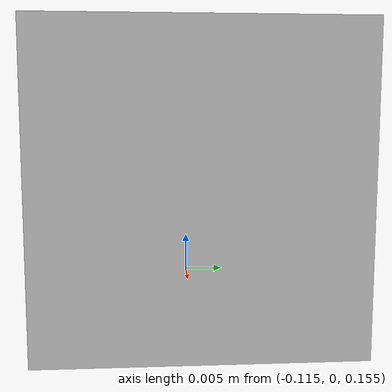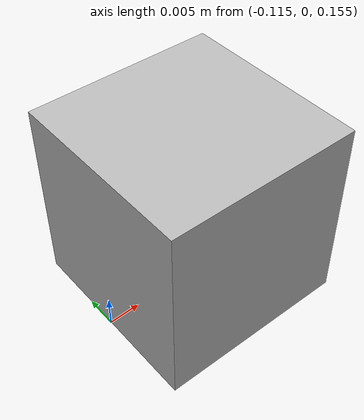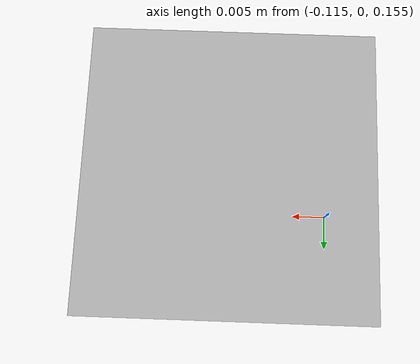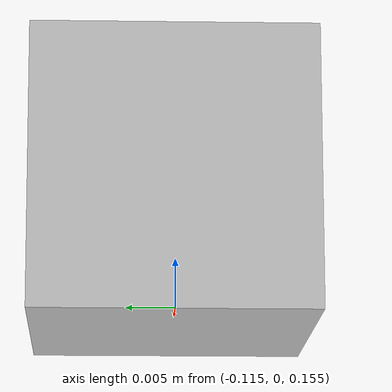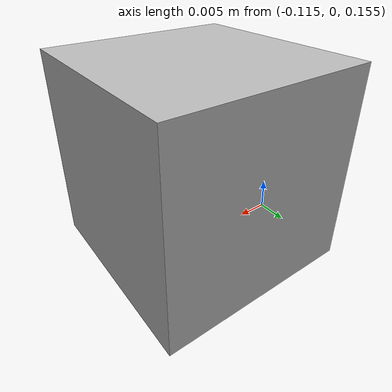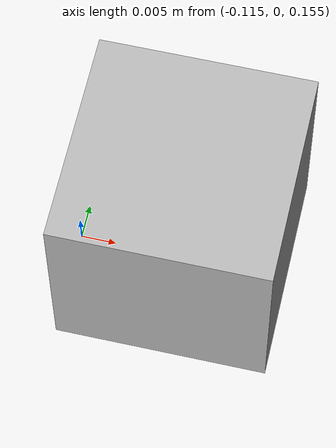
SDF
<?xml version="1.0" ?>
<sdf version="1.5">
  <model name="ptgrey_75mm_camera">
    <pose>-0.1 0 0.17 0 1.5707 0</pose>
    <static>true</static>
    <link name="link">
      <inertial>
        <pose>0 0 0 0 0 0</pose>
        <mass>0.000001</mass>
        <inertia>
          <ixx>0.000001</ixx>
          <ixy>0.000000</ixy>
          <ixz>0.000000</ixz>
          <iyy>0.000001</iyy>
          <iyz>0.000000</iyz>
          <izz>0.000001</izz>
        </inertia>
      </inertial>
      <collision name="collision">
        <geometry>
          <box>
            <size>0.03 0.03 0.03</size>
          </box>
        </geometry>
      </collision>
      <visual name="visual">
        <geometry>
          <box>
            <size>0.03 0.03 0.03</size>
          </box>
        </geometry>
      </visual>
      <sensor name="camera" type="camera">
        <camera>
          <horizontal_fov>0.0802851</horizontal_fov>
          <image>
            <width>4096</width>
            <height>2160</height>
          </image>
          <clip>
            <near>0.01</near>
            <far>300</far>
          </clip>
        </camera>
        <always_on>1</always_on>
        <update_rate>21</update_rate>
        <plugin name="camera_plugin" filename="libgazebo_ros_camera.so">
            <alwaysOn>true</alwaysOn>
            <updateRate>21.0</updateRate>
            <cameraName>camera_zoom</cameraName>
            <imageTopicName>image_color</imageTopicName>
            <frameName>camera</frameName>
            <cameraInfoTopicName>camera_info</cameraInfoTopicName>
            <hackBaseline>0.07</hackBaseline>
            <distortionK1>0.0</distortionK1>
            <distortionK2>0.0</distortionK2>
            <distortionK3>0.0</distortionK3>
            <distortionT1>0.0</distortionT1>
            <distortionT2>0.0</distortionT2>
        </plugin>
      </sensor>
    </link>
  </model>
</sdf>
